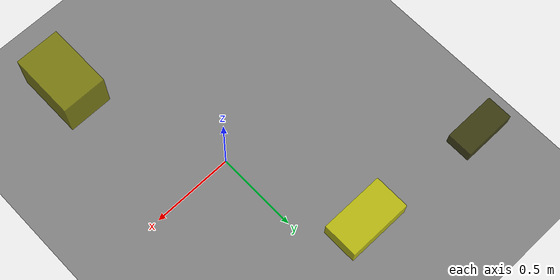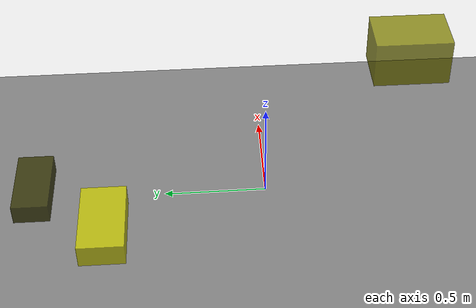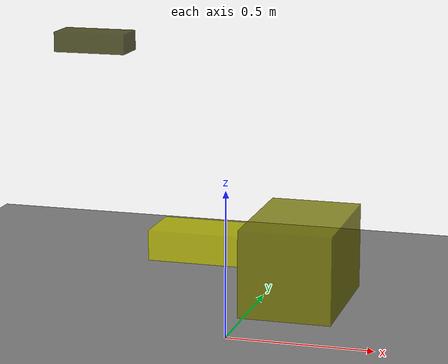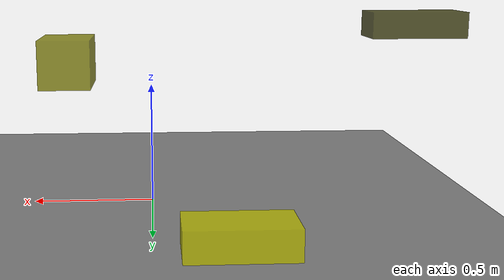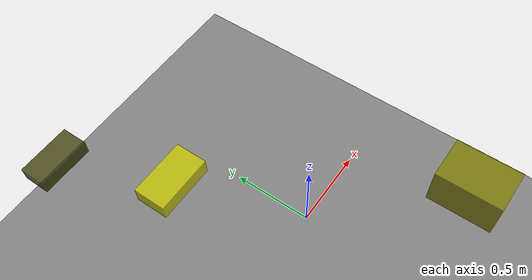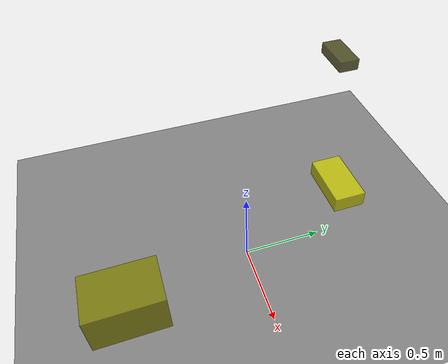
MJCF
<?xml version="1.0"?>
<mujoco model="obstacle_scene">
  <compiler angle="radian" coordinate="local"/>
  <option timestep="0.001" gravity="0 0 -9.81"/>

  <asset>
    <material name="obstacle_mat" rgba="0.8 0.8 0.0 0.8"/>
    <material name="ground_mat" rgba="0.5 0.5 0.5 1"/>
  </asset>

  <worldbody>
    <!-- Ground plane -->
    <geom name="ground" type="plane" size="3 3 0.1" material="ground_mat"/>

    <!-- Obstacles -->
    <body name="obstacle_0" pos="-0.794483 0.954583 0.820696">
      <geom name="obs_0" type="box" size="0.141656 0.068286 0.038406" rgba="0.2 0.2 0.0 0.8"/>
    </body>
    <body name="obstacle_1" pos="0.428623 -0.758122 0.512661">
      <geom name="obs_1" type="box" size="0.128451 0.190854 0.121736" rgba="0.5 0.5 0.0 0.8"/>
    </body>
    <body name="obstacle_2" pos="-0.294205 0.787239 0.100063">
      <geom name="obs_2" type="box" size="0.198387 0.108941 0.057266" rgba="0.8 0.8 0.0 0.8"/>
    </body>
  </worldbody>
</mujoco>
